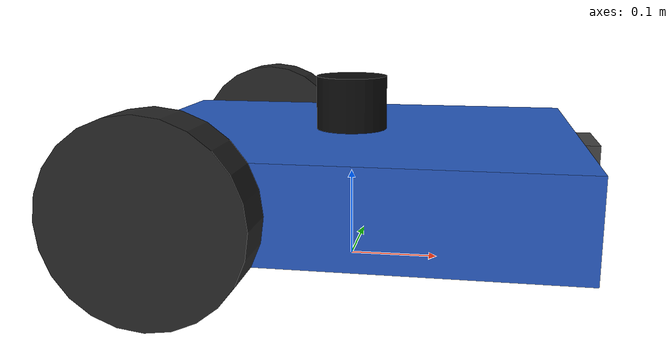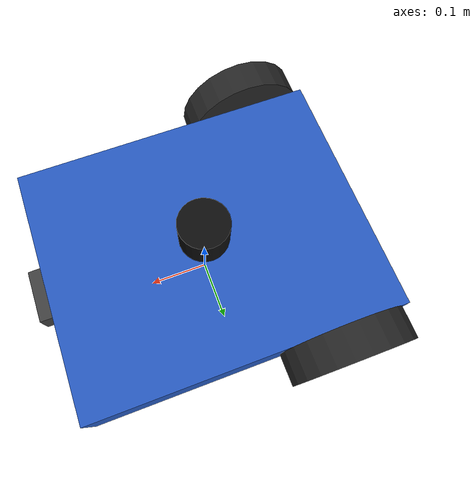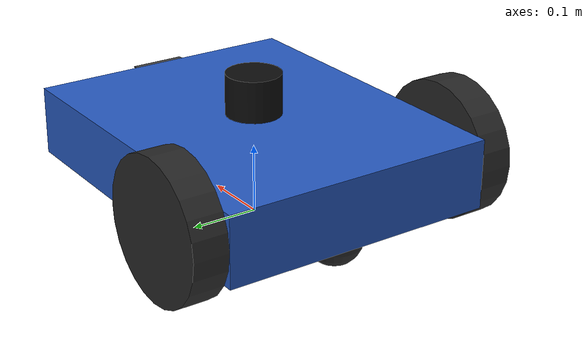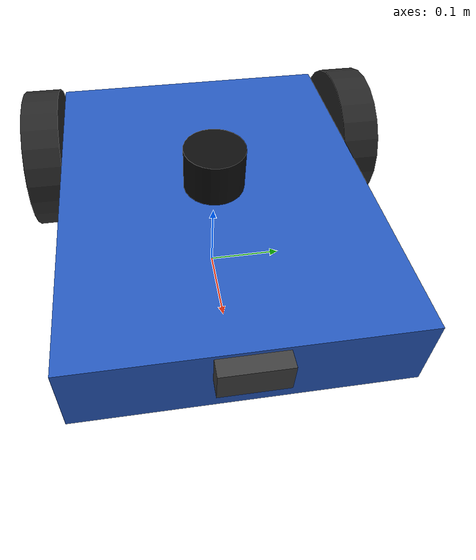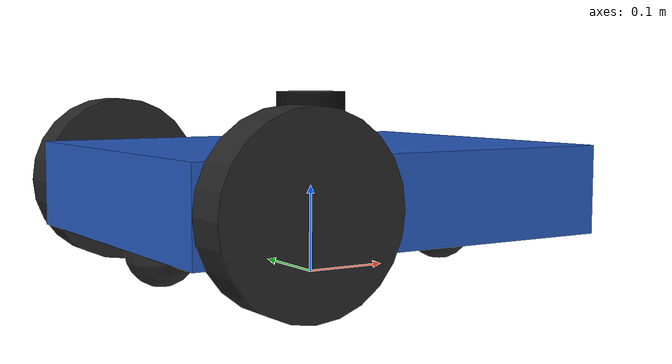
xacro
<?xml version="1.0"?>
<robot xmlns:xacro="http://www.ros.org/wiki/xacro" name="amr_robot">

  <xacro:property name="base_mass"       value="15.0"/>
  <xacro:property name="base_length"     value="0.5"/>
  <xacro:property name="base_width"      value="0.4"/>
  <xacro:property name="base_height"     value="0.1"/>

  <xacro:property name="wheel_mass"      value="0.8"/>
  <xacro:property name="wheel_radius"    value="0.1"/>
  <xacro:property name="wheel_width"     value="0.05"/>
  <xacro:property name="wheel_sep"       value="0.45"/>
  <xacro:property name="wheel_x_offset"  value="0.1"/>

  <xacro:property name="wheel_damping"   value="0.1"/>
  <xacro:property name="wheel_friction"  value="0.0"/>
  <xacro:property name="wheel_effort"    value="10.0"/>
  <xacro:property name="wheel_velocity"  value="5.0"/>

  <xacro:property name="caster_radius"   value="0.04"/>
  <xacro:property name="caster_mass"     value="0.1"/>
  <xacro:property name="caster_z"        value="${-(wheel_radius - caster_radius)}"/>
  <xacro:property name="caster_x_reach"  value="${base_length/2 - 0.06}"/>

  <xacro:property name="lidar_radius"    value="0.04"/>
  <xacro:property name="lidar_length"    value="0.06"/>
  <xacro:property name="lidar_mass"      value="0.1"/>

  <xacro:property name="camera_size_x"   value="0.04"/>
  <xacro:property name="camera_size_y"   value="0.08"/>
  <xacro:property name="camera_size_z"   value="0.04"/>
  <xacro:property name="camera_mass"     value="0.05"/>

  <xacro:macro name="box_inertia" params="m x y z">
    <inertial>
      <mass value="${m}"/>
      <inertia
        ixx="${m/12.0*(y*y+z*z)}" ixy="0.0" ixz="0.0"
        iyy="${m/12.0*(x*x+z*z)}" iyz="0.0"
        izz="${m/12.0*(x*x+y*y)}"/>
    </inertial>
  </xacro:macro>

  <xacro:macro name="cylinder_inertia" params="m r h">
    <inertial>
      <mass value="${m}"/>
      <inertia
        ixx="${m/12.0*(3*r*r+h*h)}" ixy="0.0" ixz="0.0"
        iyy="${m/12.0*(3*r*r+h*h)}" iyz="0.0"
        izz="${m/2.0*r*r}"/>
    </inertial>
  </xacro:macro>

  <xacro:macro name="sphere_inertia" params="m r">
    <inertial>
      <mass value="${m}"/>
      <inertia
        ixx="${2.0/5.0*m*r*r}" ixy="0.0" ixz="0.0"
        iyy="${2.0/5.0*m*r*r}" iyz="0.0"
        izz="${2.0/5.0*m*r*r}"/>
    </inertial>
  </xacro:macro>

  <link name="base_footprint"/>

  <joint name="base_joint" type="fixed">
    <parent link="base_footprint"/>
    <child  link="base_link"/>
    <origin xyz="0 0 ${wheel_radius}" rpy="0 0 0"/>
  </joint>

  <link name="base_link">
    <visual>
      <geometry>
        <box size="${base_length} ${base_width} ${base_height}"/>
      </geometry>
      <material name="red">
        <color rgba="0.15 0.35 0.75 1.0"/>
      </material>
    </visual>
    <collision>
      <geometry>
        <box size="${base_length} ${base_width} ${base_height}"/>
      </geometry>
    </collision>
    <xacro:box_inertia m="${base_mass}" x="${base_length}" y="${base_width}" z="${base_height}"/>
  </link>

  <xacro:macro name="drive_wheel" params="prefix y_sign">

    <link name="${prefix}_wheel">
      <visual>
        <origin xyz="0 0 0" rpy="${pi/2} 0 0"/>
        <geometry>
          <cylinder radius="${wheel_radius}" length="${wheel_width}"/>
        </geometry>
        <material name="dark_gray">
          <color rgba="0.15 0.15 0.15 1.0"/>
        </material>
      </visual>
      <collision>
        <origin xyz="0 0 0" rpy="${pi/2} 0 0"/>
        <geometry>
          <cylinder radius="${wheel_radius}" length="${wheel_width}"/>
        </geometry>
      </collision>
      <xacro:cylinder_inertia m="${wheel_mass}" r="${wheel_radius}" h="${wheel_width}"/>
    </link>

    <joint name="${prefix}_wheel_joint" type="continuous">
      <parent link="base_link"/>
      <child  link="${prefix}_wheel"/>
      <origin xyz="${-(base_length/2 - wheel_x_offset)} ${y_sign * wheel_sep/2} 0" rpy="0 0 0"/>
      <axis xyz="0 1 0"/>
      <dynamics damping="${wheel_damping}" friction="${wheel_friction}"/>
      <limit effort="${wheel_effort}" velocity="${wheel_velocity}"/>
    </joint>

  </xacro:macro>

  <xacro:drive_wheel prefix="left"  y_sign="1"/>
  <xacro:drive_wheel prefix="right" y_sign="-1"/>

  <xacro:macro name="caster" params="prefix x_pos">

    <link name="${prefix}_caster">
      <visual>
        <geometry>
          <sphere radius="${caster_radius}"/>
        </geometry>
        <material name="dark_gray">
          <color rgba="0.15 0.15 0.15 1.0"/>
        </material>
      </visual>
      <collision>
        <geometry>
          <sphere radius="${caster_radius}"/>
        </geometry>
      </collision>
      <xacro:sphere_inertia m="${caster_mass}" r="${caster_radius}"/>
    </link>

    <joint name="${prefix}_caster_joint" type="fixed">
      <parent link="base_link"/>
      <child  link="${prefix}_caster"/>
      <origin xyz="${x_pos} 0 ${caster_z}" rpy="0 0 0"/>
    </joint>

  </xacro:macro>

  <xacro:caster prefix="front" x_pos="${caster_x_reach}"/>
  <xacro:caster prefix="rear"  x_pos="${-caster_x_reach}"/>

  <link name="lidar_link">
    <visual>
      <geometry>
        <cylinder radius="${lidar_radius}" length="${lidar_length}"/>
      </geometry>
      <material name="black">
        <color rgba="0.05 0.05 0.05 1.0"/>
      </material>
    </visual>
    <collision>
      <geometry>
        <cylinder radius="${lidar_radius}" length="${lidar_length}"/>
      </geometry>
    </collision>
    <xacro:cylinder_inertia m="${lidar_mass}" r="${lidar_radius}" h="${lidar_length}"/>
  </link>

  <joint name="lidar_joint" type="fixed">
    <parent link="base_link"/>
    <child  link="lidar_link"/>
    <origin xyz="0 0 ${base_height/2 + lidar_length/2}" rpy="0 0 0"/>
  </joint>

  <link name="camera_link">
    <visual>
      <geometry>
        <box size="${camera_size_x} ${camera_size_y} ${camera_size_z}"/>
      </geometry>
      <material name="dark_gray">
        <color rgba="0.25 0.25 0.25 1.0"/>
      </material>
    </visual>
    <collision>
      <geometry>
        <box size="${camera_size_x} ${camera_size_y} ${camera_size_z}"/>
      </geometry>
    </collision>
    <xacro:box_inertia m="${camera_mass}"
                       x="${camera_size_x}"
                       y="${camera_size_y}"
                       z="${camera_size_z}"/>
  </link>

  <joint name="camera_joint" type="fixed">
    <parent link="base_link"/>
    <child  link="camera_link"/>
    <origin xyz="${base_length/2} 0 ${base_height/4}" rpy="0 0 0"/>
  </joint>

  <link name="camera_optical_frame"/>

  <joint name="camera_optical_joint" type="fixed">
    <parent link="camera_link"/>
    <child  link="camera_optical_frame"/>
    <origin xyz="0 0 0" rpy="${-pi/2} 0 ${-pi/2}"/>
  </joint>

  <gazebo>
    <plugin filename="gz-sim-diff-drive-system"
            name="gz::sim::systems::DiffDrive">
      <left_joint>left_wheel_joint</left_joint>
      <right_joint>right_wheel_joint</right_joint>
      <wheel_separation>${wheel_sep}</wheel_separation>
      <wheel_radius>${wheel_radius}</wheel_radius>
      <odom_publish_frequency>20</odom_publish_frequency>
      <topic>cmd_vel</topic>
      <odom_topic>odom</odom_topic>
      <tf_topic>tf</tf_topic>
      <frame_id>odom</frame_id>
      <child_frame_id>base_footprint</child_frame_id>
      <max_linear_acceleration>1.0</max_linear_acceleration>
    </plugin>
  </gazebo>

  <gazebo>
    <plugin filename="gz-sim-joint-state-publisher-system"
            name="gz::sim::systems::JointStatePublisher">
      <joint_name>left_wheel_joint</joint_name>
      <joint_name>right_wheel_joint</joint_name>
      <topic>joint_states</topic>
    </plugin>
  </gazebo>

  <gazebo reference="lidar_link">
    <sensor name="lidar" type="gpu_lidar">
      <topic>scan</topic>
      <update_rate>10</update_rate>
      <gz_frame_id>lidar_link</gz_frame_id>
      <lidar>
        <scan>
          <horizontal>
            <samples>360</samples>
            <resolution>1</resolution>
            <min_angle>-3.14159265</min_angle>
            <max_angle>3.14159265</max_angle>
          </horizontal>
        </scan>
        <range>
          <min>0.35</min>
          <max>12.0</max>
          <resolution>0.01</resolution>
        </range>
        <noise>
          <type>gaussian</type>
          <mean>0.0</mean>
          <stddev>0.01</stddev>
        </noise>
      </lidar>
      <always_on>true</always_on>
      <visualize>false</visualize>
    </sensor>
  </gazebo>

  <gazebo reference="camera_link">
    <sensor name="camera" type="camera">
      <topic>camera/image_raw</topic>
      <update_rate>30</update_rate>
      <gz_frame_id>camera_optical_frame</gz_frame_id>
      <camera>
        <horizontal_fov>1.047</horizontal_fov> <!-- 60 degrees -->
        <image>
          <width>640</width>
          <height>480</height>
          <format>R8G8B8</format>
        </image>
        <clip>
          <near>0.1</near>
          <far>100.0</far>
        </clip>
      </camera>
      <always_on>true</always_on>
      <visualize>false</visualize>
    </sensor>
  </gazebo>

  <gazebo reference="base_link">
    <material>Gazebo/Red</material>
  </gazebo>

  <gazebo reference="lidar_link">
    <material>Gazebo/Black</material>
  </gazebo>

  <gazebo reference="camera_link">
    <material>Gazebo/DarkGrey</material>
  </gazebo>

  <gazebo reference="left_wheel">
    <mu1>1.0</mu1>
    <mu2>1.0</mu2>
    <kp>1000000.0</kp>
    <kd>100.0</kd>
    <minDepth>0.001</minDepth>
  </gazebo>

  <gazebo reference="right_wheel">
    <mu1>1.0</mu1>
    <mu2>1.0</mu2>
    <kp>1000000.0</kp>
    <kd>100.0</kd>
    <minDepth>0.001</minDepth>
  </gazebo>

  <gazebo reference="front_caster">
    <mu1>0.0</mu1>
    <mu2>0.0</mu2>
  </gazebo>

  <gazebo reference="rear_caster">
    <mu1>0.0</mu1>
    <mu2>0.0</mu2>
  </gazebo>

</robot>
